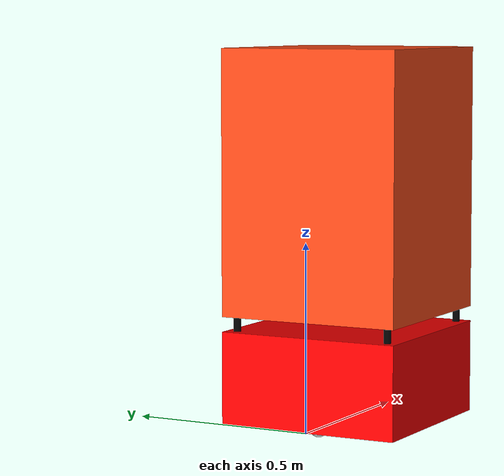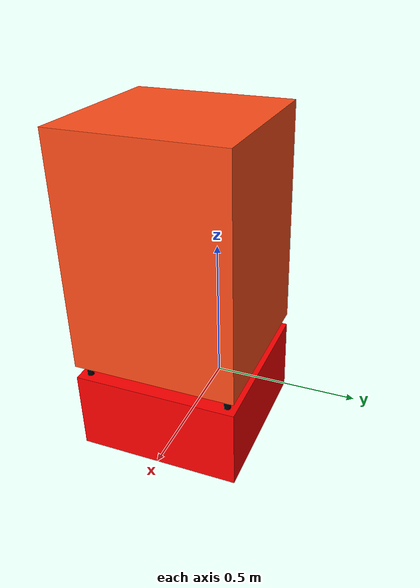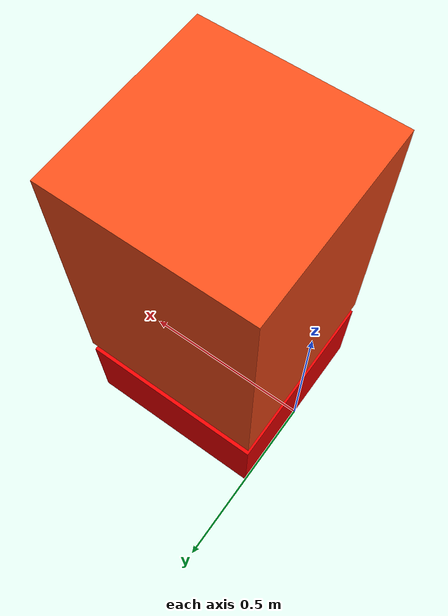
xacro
<?xml version="1.0"?>
<robot xmlns:xacro="http://www.ros.org/wiki/xacro" >

    <xacro:include filename="inertial_macros.xacro"/>

    <xacro:property name="chassis_length" value="0.5"/>
    <xacro:property name="chassis_width" value="0.5"/>
    <xacro:property name="chassis_height" value="0.25"/>
    <xacro:property name="chassis_mass" value="2.0"/>
    <xacro:property name="wheel_radius" value="0.05"/>
    <xacro:property name="wheel_thickness" value="0.025"/>
    <xacro:property name="wheel_mass" value="0.05"/>
    <xacro:property name="wheel_offset_x" value="0.25"/>
    <xacro:property name="wheel_offset_y" value="0.155"/>
    <xacro:property name="wheel_offset_z" value="0.055"/>
    <xacro:property name="caster_wheel_radius" value="0.023"/>
    <xacro:property name="caster_wheel_mass" value="0.01"/>
    <xacro:property name="caster_wheel_offset_x" value="0.425"/>
    <xacro:property name="caster_wheel_offset_z" value="0"/>

    <material name="white">
        <color rgba="1 1 1 1" />
    </material>

    <material name="orange">
        <color rgba="1 0.3 0.1 1"/>
    </material>

    <material name="blue">
        <color rgba="0.2 0.2 1 1"/>
    </material>

    <material name="black">
        <color rgba="0 0 0 1"/>
    </material>

    <material name="red">
        <color rgba="1 0 0 1"/>
    </material>

    <!-- BASE LINK -->

    <link name="base_link">

    </link>

    <!-- CHASSIS LINK -->

    <joint name="chassis_joint" type="fixed">
        <parent link="base_link"/>
        <child link="chassis"/>
        <origin xyz="0 0 0"/>
    </joint>

    <link name="chassis">
        <visual>
            <origin xyz="${chassis_length/2} 0 ${chassis_height/2}"/>
            <geometry>
                <box size="${chassis_length} ${chassis_width} ${chassis_height}"/>
            </geometry>
            <material name="red"/>
        </visual>
        <collision>
            <origin xyz="${chassis_length/2} 0 ${chassis_height/2}"/>
            <geometry>
                <box size="${chassis_length} ${chassis_width} ${chassis_height}"/>
            </geometry>
        </collision>
        <xacro:inertial_box mass="0.5" x="${chassis_length}" y="${chassis_width}" z="${chassis_height}">
            <origin xyz="${chassis_length/2} 0 ${chassis_height/2}" rpy="0 0 0"/>
        </xacro:inertial_box>
    </link>

    <gazebo reference="chassis">
        <material>Gazebo/Red</material>
    </gazebo>

    <!-- LEFT WHEEL LINK -->

    <joint name="left_wheel_joint" type="continuous">
        <parent link="base_link"/>
        <child link="left_wheel"/>
        <origin xyz="0.25 ${wheel_offset_y} 0.025" rpy="-${pi/2} 0 0" />
        <axis xyz="0 0 1"/>
    </joint>

    <link name="left_wheel">
        <visual>
            <geometry>
                <cylinder radius="${wheel_radius}" length="${wheel_thickness}"/>
            </geometry>
            <material name="blue"/>
        </visual>
        <collision>
            <geometry>
                <sphere radius="${wheel_radius}"/>
            </geometry>
        </collision>
        <xacro:inertial_cylinder mass="${wheel_mass}" length="${wheel_thickness}" radius="${wheel_radius}">
            <origin xyz="0 0 0" rpy="0 0 0"/>
        </xacro:inertial_cylinder>
    </link>

    <gazebo reference="left_wheel">
        <material>Gazebo/Blue</material>
    </gazebo>

    <!-- RIGHT WHEEL LINK -->

    <joint name="right_wheel_joint" type="continuous">
        <parent link="base_link"/>
        <child link="right_wheel"/>
        <origin xyz="0.25 ${-wheel_offset_y} 0.025" rpy="${pi/2} 0 0" />
        <axis xyz="0 0 -1"/>
    </joint>

    <link name="right_wheel">
        <visual>
            <geometry>
                <cylinder radius="${wheel_radius}" length="${wheel_thickness}"/>
            </geometry>
            <material name="blue"/>
        </visual>
        <collision>
            <geometry>
                <sphere radius="${wheel_radius}"/>
            </geometry>
        </collision>
        <xacro:inertial_cylinder mass="${wheel_mass}" length="${wheel_thickness}" radius="${wheel_radius}">
            <origin xyz="0 0 0" rpy="0 0 0"/>
        </xacro:inertial_cylinder>
    </link>

    <gazebo reference="right_wheel">
        <material>Gazebo/Blue</material>
    </gazebo>

    <!-- CASTER WHEEL LINK -->

    <joint name="caster_wheel_joint" type="fixed">
        <parent link="chassis"/>
        <child link="caster_wheel"/>
        <origin xyz="${caster_wheel_offset_x} 0 ${caster_wheel_offset_z}"/>
    </joint>

    <link name="caster_wheel">
        <visual>
            <geometry>
                <sphere radius="${caster_wheel_radius}"/>
            </geometry>
            <material name="white"/>
        </visual>
        <collision>
            <geometry>
                <sphere radius="${caster_wheel_radius}"/>
            </geometry>
        </collision>
        <xacro:inertial_sphere mass="${caster_wheel_mass}" radius="${caster_wheel_radius}">
            <origin xyz="0 0 0" rpy="0 0 0"/>
        </xacro:inertial_sphere>
    </link>

    <joint name="caster_wheel2_joint" type="fixed">
        <parent link="chassis"/>
        <child link="caster_wheel2"/>
        <origin xyz="0.075 0 ${caster_wheel_offset_z}"/>
    </joint>

    <link name="caster_wheel2">
        <visual>
            <geometry>
                <sphere radius="${caster_wheel_radius}"/>
            </geometry>
            <material name="white"/>
        </visual>
        <collision>
            <geometry>
                <sphere radius="${caster_wheel_radius}"/>
            </geometry>
        </collision>
        <xacro:inertial_sphere mass="${caster_wheel_mass}" radius="${caster_wheel_radius}">
            <origin xyz="0 0 0" rpy="0 0 0"/>
        </xacro:inertial_sphere>
    </link>

    <gazebo reference="caster_wheel">
        <material>Gazebo/White</material>
        <mu1 value="0.001"/>
        <mu2 value="0.001"/>
    </gazebo>

    <gazebo reference="caster_wheel2">
        <material>Gazebo/White</material>
        <mu1 value="0.001"/>
        <mu2 value="0.001"/>
    </gazebo>

<!-- Pillar4 -->

      <link name="pillar4_link">
        <visual>
              <geometry>
                  <cylinder radius="0.01" length="0.04"/>
              </geometry>
              <material name="black"/>
          </visual>
          <collision>
              <geometry>
                  <cylinder radius="0.01" length="0.04"/>
              </geometry>
          </collision>
        <xacro:inertial_cylinder mass="0.05" length="0.04" radius="0.01">
            <origin xyz="0 0 0" rpy="0 0 0"/>
        </xacro:inertial_cylinder>
      </link>

    <joint name="pillar4_joint" type="fixed">
          <parent link="chassis"/>
          <child link="pillar4_link"/>
          <origin xyz="0.47 -0.22 0.27" rpy="0 0 0"/>
    </joint>

<!-- Pillar3 -->

      <link name="pillar3_link">
        <visual>
              <geometry>
                  <cylinder radius="0.01" length="0.04"/>
              </geometry>
              <material name="black"/>
          </visual>
          <collision>
              <geometry>
                  <cylinder radius="0.01" length="0.04"/>
              </geometry>
          </collision>
        <xacro:inertial_cylinder mass="0.05" length="0.04" radius="0.01">
            <origin xyz="0 0 0" rpy="0 0 0"/>
        </xacro:inertial_cylinder>
      </link>

    <joint name="pillar3_joint" type="fixed">
          <parent link="chassis"/>
          <child link="pillar3_link"/>
          <origin xyz="0.03 0.22 0.27" rpy="0 0 0"/>
    </joint>

<!-- Pillar2 -->

      <link name="pillar2_link">
        <visual>
              <geometry>
                  <cylinder radius="0.01" length="0.04"/>
              </geometry>
              <material name="black"/>
          </visual>
          <collision>
              <geometry>
                  <cylinder radius="0.01" length="0.04"/>
              </geometry>
          </collision>
        <xacro:inertial_cylinder mass="0.05" length="0.04" radius="0.01">
            <origin xyz="0 0 0" rpy="0 0 0"/>
        </xacro:inertial_cylinder>
      </link>

    <joint name="pillar2_joint" type="fixed">
          <parent link="chassis"/>
          <child link="pillar2_link"/>
          <origin xyz="0.03 -0.22 0.27" rpy="0 0 0"/>
    </joint>

<!-- Pillar1 -->

      <link name="pillar1_link">
        <visual>
              <geometry>
                  <cylinder radius="0.01" length="0.04"/>
              </geometry>
              <material name="black"/>
          </visual>
          <collision>
              <geometry>
                  <cylinder radius="0.01" length="0.04"/>
              </geometry>
          </collision>
        <xacro:inertial_cylinder mass="0.05" length="0.04" radius="0.01">
            <origin xyz="0 0 0" rpy="0 0 0"/>
        </xacro:inertial_cylinder>
      </link>

    <joint name="pillar1_joint" type="fixed">
          <parent link="chassis"/>
          <child link="pillar1_link"/>
          <origin xyz="0.47 0.22 0.27" rpy="0 0 0"/>
    </joint>

 <!-- Upper LINK -->

    <joint name="upper_joint" type="fixed">
        <parent link="base_link"/>
        <child link="upper"/>
        <origin xyz="0 0 0"/>
    </joint>

    <link name="upper">
        <visual>
            <origin xyz="${chassis_length/2}  0 0.645"/>
            <geometry>
                <box size="${chassis_length} ${chassis_width} 0.71"/>
            </geometry>
            <material name="orange"/>
        </visual>
        <collision>
            <origin xyz="${chassis_length/2} 0 0.645"/>
            <geometry>
                <box size="${chassis_length} ${chassis_width} 0.71"/>
            </geometry>
        </collision>
        <xacro:inertial_box mass="0.5" x="${chassis_length}" y="${chassis_width}" z="0.71">
            <origin xyz="${chassis_length/2} 0 0.645" rpy="0 0 0"/>
        </xacro:inertial_box>
    </link>

    <gazebo reference="upper">
        <material>Gazebo/Orange</material>
    </gazebo>

</robot>
